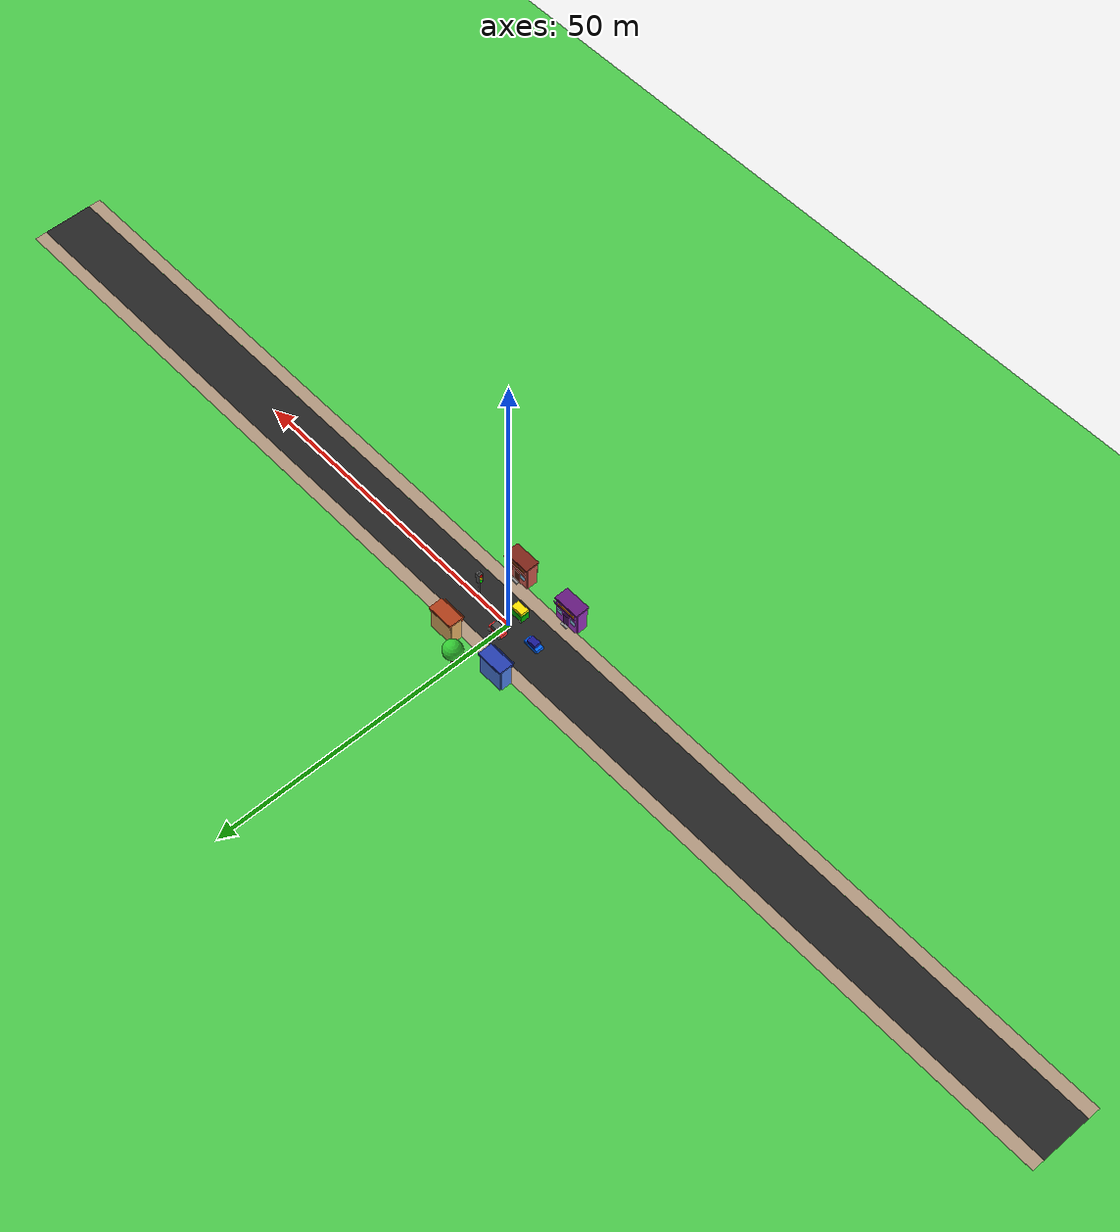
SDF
<?xml version="1.0" ?>
<sdf version="1.9">
  <world name="indian_street">

    <physics name="1ms" type="ignored">
      <max_step_size>0.01</max_step_size>
      <real_time_factor>1.0</real_time_factor>
    </physics>

    <plugin filename="gz-sim-physics-system" name="gz::sim::systems::Physics"/>
    <plugin filename="gz-sim-scene-broadcaster-system" name="gz::sim::systems::SceneBroadcaster"/>
    <plugin filename="gz-sim-user-commands-system" name="gz::sim::systems::UserCommands"/>
    <plugin filename="gz-sim-sensors-system" name="gz::sim::systems::Sensors">
      <render_engine>ogre2</render_engine>
    </plugin>

    <light type="directional" name="sun">
      <pose>0 0 50 0 0 0</pose>
      <diffuse>1 0.95 0.85 1</diffuse>
      <specular>0.5 0.5 0.5 1</specular>
      <direction>-0.4 0.2 -1</direction>
    </light>

    <scene>
      <ambient>0.6 0.6 0.6 1</ambient>
      <background>0.7 0.85 1 1</background>
    </scene>

    <model name="ground">
      <static>true</static>
      <link name="link">
        <collision name="collision">
          <geometry><plane><normal>0 0 1</normal><size>200 200</size></plane></geometry>
        </collision>
        <visual name="visual">
          <geometry><plane><normal>0 0 1</normal><size>200 200</size></plane></geometry>
          <material>
            <ambient>0.2 0.6 0.2 1</ambient>
            <diffuse>0.3 0.8 0.3 1</diffuse>
          </material>
        </visual>
      </link>
    </model>

    <model name="road">
      <static>true</static>
      <pose>0 0 0.01 0 0 0</pose>
      <link name="link">
        <visual name="visual">
          <geometry><plane><normal>0 0 1</normal><size>200 8</size></plane></geometry>
          <material>
            <ambient>0.1 0.1 0.1 1</ambient>
            <diffuse>0.15 0.15 0.15 1</diffuse>
          </material>
        </visual>
      </link>
    </model>

    <!-- ========== SHOP 1 - Kirana Store (Orange) ========== -->
    <model name="shop1">
      <static>true</static>
      <pose>5 6 0 0 0 0</pose>
      <link name="link">
        <visual name="front_wall">
          <pose>0 0 2 0 0 0</pose>
          <geometry><box><size>4 0.3 4</size></box></geometry>
          <material><ambient>0.95 0.75 0.4 1</ambient><diffuse>1 0.8 0.5 1</diffuse></material>
        </visual>
        <visual name="back_wall">
          <pose>0 1.7 2 0 0 0</pose>
          <geometry><box><size>4 0.3 4</size></box></geometry>
          <material><ambient>0.85 0.65 0.35 1</ambient><diffuse>0.9 0.7 0.4 1</diffuse></material>
        </visual>
        <visual name="side_left">
          <pose>-2 0.85 2 0 0 0</pose>
          <geometry><box><size>0.3 1.7 4</size></box></geometry>
          <material><ambient>0.85 0.65 0.35 1</ambient><diffuse>0.9 0.7 0.4 1</diffuse></material>
        </visual>
        <visual name="side_right">
          <pose>2 0.85 2 0 0 0</pose>
          <geometry><box><size>0.3 1.7 4</size></box></geometry>
          <material><ambient>0.85 0.65 0.35 1</ambient><diffuse>0.9 0.7 0.4 1</diffuse></material>
        </visual>
        <visual name="roof">
          <pose>0 0.85 4.15 0 0 0</pose>
          <geometry><box><size>4.3 2.3 0.3</size></box></geometry>
          <material><ambient>0.6 0.2 0.1 1</ambient><diffuse>0.7 0.25 0.1 1</diffuse></material>
        </visual>
        <visual name="shade">
          <pose>0 -0.5 3.5 0.35 0 0</pose>
          <geometry><box><size>4 0.05 1.0</size></box></geometry>
          <material><ambient>0.6 0.2 0.1 1</ambient><diffuse>0.7 0.25 0.1 1</diffuse></material>
        </visual>
        <visual name="door">
          <pose>0 -0.16 1.0 0 0 0</pose>
          <geometry><box><size>0.85 0.05 2.0</size></box></geometry>
          <material><ambient>0.4 0.2 0.05 1</ambient><diffuse>0.5 0.25 0.1 1</diffuse></material>
        </visual>
        <visual name="door_frame">
          <pose>0 -0.17 1.0 0 0 0</pose>
          <geometry><box><size>1.0 0.04 2.15</size></box></geometry>
          <material><ambient>0.2 0.1 0.0 1</ambient><diffuse>0.3 0.15 0.05 1</diffuse></material>
        </visual>
        <visual name="window_left">
          <pose>-1.3 -0.16 1.8 0 0 0</pose>
          <geometry><box><size>0.9 0.04 0.8</size></box></geometry>
          <material><ambient>0.5 0.8 1.0 1</ambient><diffuse>0.6 0.85 1.0 1</diffuse></material>
        </visual>
        <visual name="window_right">
          <pose>1.3 -0.16 1.8 0 0 0</pose>
          <geometry><box><size>0.9 0.04 0.8</size></box></geometry>
          <material><ambient>0.5 0.8 1.0 1</ambient><diffuse>0.6 0.85 1.0 1</diffuse></material>
        </visual>
        <visual name="signboard">
          <pose>0 -0.2 3.2 0 0 0</pose>
          <geometry><box><size>3.0 0.08 0.5</size></box></geometry>
          <material><ambient>1 0.9 0.0 1</ambient><diffuse>1 0.95 0.0 1</diffuse></material>
        </visual>
        <visual name="step">
          <pose>0 -0.45 0.1 0 0 0</pose>
          <geometry><box><size>1.2 0.4 0.2</size></box></geometry>
          <material><ambient>0.5 0.5 0.5 1</ambient><diffuse>0.6 0.6 0.6 1</diffuse></material>
        </visual>
        <collision name="collision">
          <pose>0 0.85 2 0 0 0</pose>
          <geometry><box><size>4 1.7 4</size></box></geometry>
        </collision>
      </link>
    </model>

    <!-- ========== SHOP 2 - Medical Store (Blue) ========== -->
    <model name="shop2">
      <static>true</static>
      <pose>-5 6 0 0 0 0</pose>
      <link name="link">
        <visual name="front_wall">
          <pose>0 0 2 0 0 0</pose>
          <geometry><box><size>4 0.3 4</size></box></geometry>
          <material><ambient>0.3 0.5 0.95 1</ambient><diffuse>0.35 0.6 1 1</diffuse></material>
        </visual>
        <visual name="back_wall">
          <pose>0 1.7 2 0 0 0</pose>
          <geometry><box><size>4 0.3 4</size></box></geometry>
          <material><ambient>0.25 0.45 0.85 1</ambient><diffuse>0.3 0.5 0.9 1</diffuse></material>
        </visual>
        <visual name="side_left">
          <pose>-2 0.85 2 0 0 0</pose>
          <geometry><box><size>0.3 1.7 4</size></box></geometry>
          <material><ambient>0.25 0.45 0.85 1</ambient><diffuse>0.3 0.5 0.9 1</diffuse></material>
        </visual>
        <visual name="side_right">
          <pose>2 0.85 2 0 0 0</pose>
          <geometry><box><size>0.3 1.7 4</size></box></geometry>
          <material><ambient>0.25 0.45 0.85 1</ambient><diffuse>0.3 0.5 0.9 1</diffuse></material>
        </visual>
        <visual name="roof">
          <pose>0 0.85 4.15 0 0 0</pose>
          <geometry><box><size>4.3 2.3 0.3</size></box></geometry>
          <material><ambient>0.1 0.2 0.6 1</ambient><diffuse>0.15 0.25 0.7 1</diffuse></material>
        </visual>
        <visual name="shade">
          <pose>0 -0.5 3.5 0.35 0 0</pose>
          <geometry><box><size>4 0.05 1.0</size></box></geometry>
          <material><ambient>0.1 0.2 0.6 1</ambient><diffuse>0.15 0.25 0.7 1</diffuse></material>
        </visual>
        <visual name="door">
          <pose>0 -0.16 1.0 0 0 0</pose>
          <geometry><box><size>0.85 0.05 2.0</size></box></geometry>
          <material><ambient>0.4 0.2 0.05 1</ambient><diffuse>0.5 0.25 0.1 1</diffuse></material>
        </visual>
        <visual name="door_frame">
          <pose>0 -0.17 1.0 0 0 0</pose>
          <geometry><box><size>1.0 0.04 2.15</size></box></geometry>
          <material><ambient>0.1 0.1 0.4 1</ambient><diffuse>0.15 0.15 0.5 1</diffuse></material>
        </visual>
        <visual name="window_left">
          <pose>-1.3 -0.16 1.8 0 0 0</pose>
          <geometry><box><size>0.9 0.04 0.8</size></box></geometry>
          <material><ambient>0.5 0.8 1.0 1</ambient><diffuse>0.6 0.85 1.0 1</diffuse></material>
        </visual>
        <visual name="window_right">
          <pose>1.3 -0.16 1.8 0 0 0</pose>
          <geometry><box><size>0.9 0.04 0.8</size></box></geometry>
          <material><ambient>0.5 0.8 1.0 1</ambient><diffuse>0.6 0.85 1.0 1</diffuse></material>
        </visual>
        <visual name="signboard">
          <pose>0 -0.2 3.2 0 0 0</pose>
          <geometry><box><size>3.0 0.08 0.5</size></box></geometry>
          <material><ambient>0.0 0.8 0.3 1</ambient><diffuse>0.0 0.9 0.4 1</diffuse></material>
        </visual>
        <visual name="cross_v">
          <pose>0 -0.25 3.2 0 0 0</pose>
          <geometry><box><size>0.1 0.05 0.38</size></box></geometry>
          <material><ambient>1 1 1 1</ambient><diffuse>1 1 1 1</diffuse></material>
        </visual>
        <visual name="cross_h">
          <pose>0 -0.25 3.2 0 0 0</pose>
          <geometry><box><size>0.38 0.05 0.1</size></box></geometry>
          <material><ambient>1 1 1 1</ambient><diffuse>1 1 1 1</diffuse></material>
        </visual>
        <visual name="step">
          <pose>0 -0.45 0.1 0 0 0</pose>
          <geometry><box><size>1.2 0.4 0.2</size></box></geometry>
          <material><ambient>0.5 0.5 0.5 1</ambient><diffuse>0.6 0.6 0.6 1</diffuse></material>
        </visual>
        <collision name="collision">
          <pose>0 0.85 2 0 0 0</pose>
          <geometry><box><size>4 1.7 4</size></box></geometry>
        </collision>
      </link>
    </model>

    <!-- ========== SHOP 3 - Chai Stall (Red) ========== -->
    <model name="shop3">
      <static>true</static>
      <pose>5 -6 0 0 0 0</pose>
      <link name="link">
        <visual name="front_wall">
          <pose>0 0 2 0 0 0</pose>
          <geometry><box><size>4 0.3 4</size></box></geometry>
          <material><ambient>0.85 0.35 0.3 1</ambient><diffuse>0.9 0.4 0.35 1</diffuse></material>
        </visual>
        <visual name="back_wall">
          <pose>0 -1.7 2 0 0 0</pose>
          <geometry><box><size>4 0.3 4</size></box></geometry>
          <material><ambient>0.75 0.3 0.25 1</ambient><diffuse>0.8 0.35 0.3 1</diffuse></material>
        </visual>
        <visual name="side_left">
          <pose>-2 -0.85 2 0 0 0</pose>
          <geometry><box><size>0.3 1.7 4</size></box></geometry>
          <material><ambient>0.75 0.3 0.25 1</ambient><diffuse>0.8 0.35 0.3 1</diffuse></material>
        </visual>
        <visual name="side_right">
          <pose>2 -0.85 2 0 0 0</pose>
          <geometry><box><size>0.3 1.7 4</size></box></geometry>
          <material><ambient>0.75 0.3 0.25 1</ambient><diffuse>0.8 0.35 0.3 1</diffuse></material>
        </visual>
        <visual name="roof">
          <pose>0 -0.85 4.15 0 0 0</pose>
          <geometry><box><size>4.3 2.3 0.3</size></box></geometry>
          <material><ambient>0.4 0.1 0.05 1</ambient><diffuse>0.5 0.15 0.1 1</diffuse></material>
        </visual>
        <visual name="shade">
          <pose>0 0.5 3.5 -0.35 0 0</pose>
          <geometry><box><size>4 0.05 1.0</size></box></geometry>
          <material><ambient>0.4 0.1 0.05 1</ambient><diffuse>0.5 0.15 0.1 1</diffuse></material>
        </visual>
        <visual name="door">
          <pose>0 0.16 1.0 0 0 0</pose>
          <geometry><box><size>0.85 0.05 2.0</size></box></geometry>
          <material><ambient>0.4 0.2 0.05 1</ambient><diffuse>0.5 0.25 0.1 1</diffuse></material>
        </visual>
        <visual name="door_frame">
          <pose>0 0.17 1.0 0 0 0</pose>
          <geometry><box><size>1.0 0.04 2.15</size></box></geometry>
          <material><ambient>0.2 0.08 0.0 1</ambient><diffuse>0.3 0.1 0.05 1</diffuse></material>
        </visual>
        <visual name="window_left">
          <pose>-1.3 0.16 1.8 0 0 0</pose>
          <geometry><box><size>0.9 0.04 0.8</size></box></geometry>
          <material><ambient>0.5 0.8 1.0 1</ambient><diffuse>0.6 0.85 1.0 1</diffuse></material>
        </visual>
        <visual name="window_right">
          <pose>1.3 0.16 1.8 0 0 0</pose>
          <geometry><box><size>0.9 0.04 0.8</size></box></geometry>
          <material><ambient>0.5 0.8 1.0 1</ambient><diffuse>0.6 0.85 1.0 1</diffuse></material>
        </visual>
        <visual name="signboard">
          <pose>0 0.2 3.2 0 0 0</pose>
          <geometry><box><size>3.0 0.08 0.5</size></box></geometry>
          <material><ambient>0.5 0.25 0.0 1</ambient><diffuse>0.6 0.3 0.05 1</diffuse></material>
        </visual>
        <visual name="step">
          <pose>0 0.45 0.1 0 0 0</pose>
          <geometry><box><size>1.2 0.4 0.2</size></box></geometry>
          <material><ambient>0.5 0.5 0.5 1</ambient><diffuse>0.6 0.6 0.6 1</diffuse></material>
        </visual>
        <collision name="collision">
          <pose>0 -0.85 2 0 0 0</pose>
          <geometry><box><size>4 1.7 4</size></box></geometry>
        </collision>
      </link>
    </model>

    <!-- ========== SHOP 4 - Stationery Store (Purple) ========== -->
    <model name="shop4">
      <static>true</static>
      <pose>-5 -6 0 0 0 0</pose>
      <link name="link">
        <visual name="front_wall">
          <pose>0 0 2 0 0 0</pose>
          <geometry><box><size>4 0.3 4</size></box></geometry>
          <material><ambient>0.6 0.2 0.75 1</ambient><diffuse>0.7 0.25 0.85 1</diffuse></material>
        </visual>
        <visual name="back_wall">
          <pose>0 -1.7 2 0 0 0</pose>
          <geometry><box><size>4 0.3 4</size></box></geometry>
          <material><ambient>0.5 0.15 0.65 1</ambient><diffuse>0.6 0.2 0.75 1</diffuse></material>
        </visual>
        <visual name="side_left">
          <pose>-2 -0.85 2 0 0 0</pose>
          <geometry><box><size>0.3 1.7 4</size></box></geometry>
          <material><ambient>0.5 0.15 0.65 1</ambient><diffuse>0.6 0.2 0.75 1</diffuse></material>
        </visual>
        <visual name="side_right">
          <pose>2 -0.85 2 0 0 0</pose>
          <geometry><box><size>0.3 1.7 4</size></box></geometry>
          <material><ambient>0.5 0.15 0.65 1</ambient><diffuse>0.6 0.2 0.75 1</diffuse></material>
        </visual>
        <visual name="roof">
          <pose>0 -0.85 4.15 0 0 0</pose>
          <geometry><box><size>4.3 2.3 0.3</size></box></geometry>
          <material><ambient>0.3 0.05 0.4 1</ambient><diffuse>0.4 0.1 0.5 1</diffuse></material>
        </visual>
        <visual name="shade">
          <pose>0 0.5 3.5 -0.35 0 0</pose>
          <geometry><box><size>4 0.05 1.0</size></box></geometry>
          <material><ambient>0.3 0.05 0.4 1</ambient><diffuse>0.4 0.1 0.5 1</diffuse></material>
        </visual>
        <visual name="door">
          <pose>0 0.16 1.0 0 0 0</pose>
          <geometry><box><size>0.85 0.05 2.0</size></box></geometry>
          <material><ambient>0.4 0.2 0.05 1</ambient><diffuse>0.5 0.25 0.1 1</diffuse></material>
        </visual>
        <visual name="door_frame">
          <pose>0 0.17 1.0 0 0 0</pose>
          <geometry><box><size>1.0 0.04 2.15</size></box></geometry>
          <material><ambient>0.25 0.05 0.3 1</ambient><diffuse>0.3 0.1 0.4 1</diffuse></material>
        </visual>
        <visual name="window_left">
          <pose>-1.3 0.16 1.8 0 0 0</pose>
          <geometry><box><size>0.9 0.04 0.8</size></box></geometry>
          <material><ambient>0.5 0.8 1.0 1</ambient><diffuse>0.6 0.85 1.0 1</diffuse></material>
        </visual>
        <visual name="window_right">
          <pose>1.3 0.16 1.8 0 0 0</pose>
          <geometry><box><size>0.9 0.04 0.8</size></box></geometry>
          <material><ambient>0.5 0.8 1.0 1</ambient><diffuse>0.6 0.85 1.0 1</diffuse></material>
        </visual>
        <visual name="signboard">
          <pose>0 0.2 3.2 0 0 0</pose>
          <geometry><box><size>3.0 0.08 0.5</size></box></geometry>
          <material><ambient>1 0.5 0.0 1</ambient><diffuse>1 0.6 0.0 1</diffuse></material>
        </visual>
        <visual name="step">
          <pose>0 0.45 0.1 0 0 0</pose>
          <geometry><box><size>1.2 0.4 0.2</size></box></geometry>
          <material><ambient>0.5 0.5 0.5 1</ambient><diffuse>0.6 0.6 0.6 1</diffuse></material>
        </visual>
        <collision name="collision">
          <pose>0 -0.85 2 0 0 0</pose>
          <geometry><box><size>4 1.7 4</size></box></geometry>
        </collision>
      </link>
    </model>

    <model name="tree1">
      <static>true</static>
      <pose>0 10 2 0 0 0</pose>
      <link name="link">
        <visual name="trunk">
          <geometry><cylinder><radius>0.3</radius><length>3</length></cylinder></geometry>
          <material><ambient>0.4 0.25 0.1 1</ambient><diffuse>0.5 0.3 0.15 1</diffuse></material>
        </visual>
        <visual name="leaves">
          <pose>0 0 2 0 0 0</pose>
          <geometry><sphere><radius>1.5</radius></sphere></geometry>
          <material><ambient>0.1 0.6 0.1 1</ambient><diffuse>0.2 0.8 0.2 1</diffuse></material>
        </visual>
      </link>
    </model>

    <model name="car1">
      <static>true</static>
      <pose>0 2 0.5 0 0 0</pose>
      <link name="link">
        <visual name="body">
          <pose>0 0 0.4 0 0 0</pose>
          <geometry><box><size>2.5 1.2 0.6</size></box></geometry>
          <material><ambient>0.8 0.1 0.1 1</ambient><diffuse>1 0.2 0.2 1</diffuse></material>
        </visual>
        <visual name="cabin">
          <pose>0 0 0.9 0 0 0</pose>
          <geometry><box><size>1.5 1.1 0.7</size></box></geometry>
          <material><ambient>0.2 0.2 0.2 1</ambient><diffuse>0.3 0.3 0.3 1</diffuse></material>
        </visual>
        <visual name="wheel1"><pose>0.9 0.65 0.2 1.57 0 0</pose><geometry><cylinder><radius>0.25</radius><length>0.2</length></cylinder></geometry><material><ambient>0.05 0.05 0.05 1</ambient></material></visual>
        <visual name="wheel2"><pose>-0.9 0.65 0.2 1.57 0 0</pose><geometry><cylinder><radius>0.25</radius><length>0.2</length></cylinder></geometry><material><ambient>0.05 0.05 0.05 1</ambient></material></visual>
        <visual name="wheel3"><pose>0.9 -0.65 0.2 1.57 0 0</pose><geometry><cylinder><radius>0.25</radius><length>0.2</length></cylinder></geometry><material><ambient>0.05 0.05 0.05 1</ambient></material></visual>
        <visual name="wheel4"><pose>-0.9 -0.65 0.2 1.57 0 0</pose><geometry><cylinder><radius>0.25</radius><length>0.2</length></cylinder></geometry><material><ambient>0.05 0.05 0.05 1</ambient></material></visual>
        <collision name="collision"><geometry><box><size>2.5 1.2 1.2</size></box></geometry></collision>
      </link>
    </model>

    <model name="auto_rickshaw">
      <static>true</static>
      <pose>0 -2 0.6 0 0 0</pose>
      <link name="body_link">
        <visual name="main_body">
          <pose>0 0 0.6 0 0 0</pose>
          <geometry><box><size>2.2 1.4 1.2</size></box></geometry>
          <material><ambient>0.0 0.5 0.0 1</ambient><diffuse>0.0 0.7 0.0 1</diffuse></material>
        </visual>
        <visual name="roof">
          <pose>0 0 1.4 0 0 0</pose>
          <geometry><box><size>2.0 1.3 0.6</size></box></geometry>
          <material><ambient>1 0.85 0 1</ambient><diffuse>1 0.9 0 1</diffuse></material>
        </visual>
        <visual name="front_wheel"><pose>0.9 0 -0.1 1.57 0 0</pose><geometry><cylinder><radius>0.25</radius><length>0.2</length></cylinder></geometry><material><ambient>0.02 0.02 0.02 1</ambient></material></visual>
        <visual name="rear_left_wheel"><pose>-0.8 0.6 -0.1 1.57 0 0</pose><geometry><cylinder><radius>0.25</radius><length>0.2</length></cylinder></geometry><material><ambient>0.02 0.02 0.02 1</ambient></material></visual>
        <visual name="rear_right_wheel"><pose>-0.8 -0.6 -0.1 1.57 0 0</pose><geometry><cylinder><radius>0.25</radius><length>0.2</length></cylinder></geometry><material><ambient>0.02 0.02 0.02 1</ambient></material></visual>
      </link>
    </model>

    <model name="traffic_light_pole">
      <static>true</static>
      <pose>6 0 0 0 0 0</pose>
      <link name="link">
        <sensor name="traffic_camera" type="camera">
          <pose>0 0 5.5 0 0.3 3.14159</pose>
          <always_on>true</always_on>
          <update_rate>30</update_rate>
          <camera>
            <horizontal_fov>1.047</horizontal_fov>
            <image><width>640</width><height>480</height><format>R8G8B8</format></image>
            <clip><near>0.1</near><far>100</far></clip>
          </camera>
        </sensor>
        <visual name="pole">
          <pose>0 0 3 0 0 0</pose>
          <geometry><cylinder><radius>0.12</radius><length>6</length></cylinder></geometry>
          <material><ambient>0.4 0.4 0.4 1</ambient><diffuse>0.5 0.5 0.5 1</diffuse></material>
        </visual>
        <visual name="signal_box">
          <pose>0 0 5 0 0 0</pose>
          <geometry><box><size>0.7 0.7 1.8</size></box></geometry>
          <material><ambient>0.25 0.25 0.25 1</ambient><diffuse>0.35 0.35 0.35 1</diffuse></material>
        </visual>
      </link>
    </model>

    <model name="red_light_model">
      <static>true</static>
      <pose>5.64 0 5.6 0 0 0</pose>
      <link name="link">
        <visual name="visual">
          <geometry><sphere><radius>0.22</radius></sphere></geometry>
          <material><ambient>1 0 0 1</ambient><diffuse>1 0 0 1</diffuse><emissive>1 0 0 1</emissive></material>
        </visual>
      </link>
    </model>

    <model name="yellow_light_model">
      <static>true</static>
      <pose>5.64 0 5.0 0 0 0</pose>
      <link name="link">
        <visual name="visual">
          <geometry><sphere><radius>0.22</radius></sphere></geometry>
          <material><ambient>1 1 0 1</ambient><diffuse>1 1 0 1</diffuse><emissive>1 1 0 1</emissive></material>
        </visual>
      </link>
    </model>

    <model name="green_light_model">
      <static>true</static>
      <pose>5.64 0 4.4 0 0 0</pose>
      <link name="link">
        <visual name="visual">
          <geometry><sphere><radius>0.22</radius></sphere></geometry>
          <material><ambient>0 1 0 1</ambient><diffuse>0 1 0 1</diffuse><emissive>0 1 0 1</emissive></material>
        </visual>
      </link>
    </model>

    <model name="footpath_left">
      <static>true</static>
      <pose>0 5 0.02 0 0 0</pose>
      <link name="link">
        <visual name="visual">
          <geometry><plane><normal>0 0 1</normal><size>200 2</size></plane></geometry>
          <material><ambient>0.6 0.5 0.4 1</ambient><diffuse>0.7 0.6 0.5 1</diffuse></material>
        </visual>
      </link>
    </model>

    <model name="footpath_right">
      <static>true</static>
      <pose>0 -5 0.02 0 0 0</pose>
      <link name="link">
        <visual name="visual">
          <geometry><plane><normal>0 0 1</normal><size>200 2</size></plane></geometry>
          <material><ambient>0.6 0.5 0.4 1</ambient><diffuse>0.7 0.6 0.5 1</diffuse></material>
        </visual>
      </link>
    </model>

    <model name="moving_car">
      <pose>-5 0 0.5 0 0 0</pose>
      <link name="link">
        <collision name="collision">
          <geometry><box><size>2.5 1.2 1.0</size></box></geometry>
        </collision>
        <visual name="body">
          <pose>0 0 0.4 0 0 0</pose>
          <geometry><box><size>2.5 1.2 0.6</size></box></geometry>
          <material><ambient>0.0 0.3 1.0 1</ambient><diffuse>0.0 0.4 1.0 1</diffuse></material>
        </visual>
        <visual name="cabin">
          <pose>0 0 0.9 0 0 0</pose>
          <geometry><box><size>1.5 1.1 0.7</size></box></geometry>
          <material><ambient>0.1 0.1 0.5 1</ambient><diffuse>0.1 0.1 0.6 1</diffuse></material>
        </visual>
        <inertial>
          <mass>1.0</mass>
          <inertia><ixx>1</ixx><iyy>1</iyy><izz>1</izz></inertia>
        </inertial>
      </link>
      <plugin filename="gz-sim-velocity-control-system" name="gz::sim::systems::VelocityControl">
        <initial_linear>3 0 0</initial_linear>
      </plugin>
    </model>

    <plugin filename="libTrafficLightPlugin.so" name="TrafficLightPlugin"/>

  </world>
</sdf>
